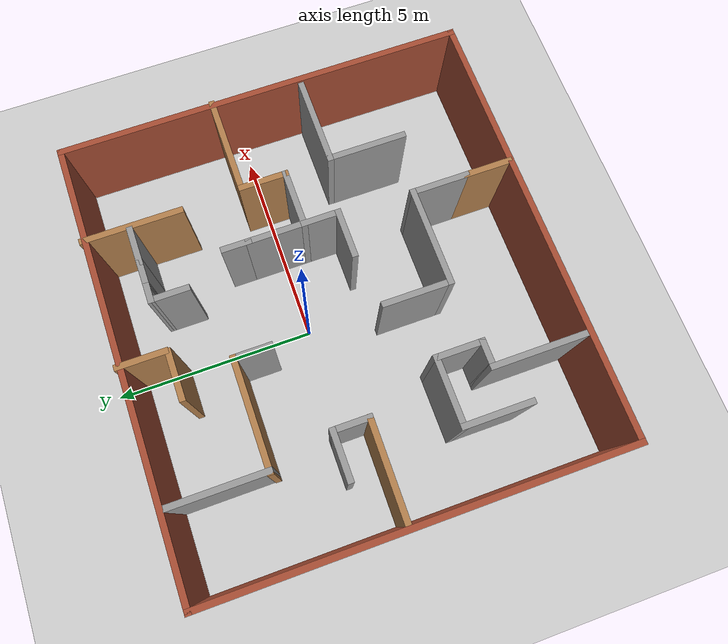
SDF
<sdf version="1.7">
 <world name="default">
  <light name="sun" type="directional">
   <pose>0 0 10 0 -0 0</pose>
   <diffuse>0.8 0.8 0.8 1</diffuse>
   <specular>0.2 0.2 0.2 1</specular>
   <attenuation>
    <range>1000</range>
    <constant>0.9</constant>
    <linear>0.01</linear>
    <quadratic>0.001</quadratic>
   </attenuation>
   <direction>-0.5 0.1 -0.9</direction>
   <spot><inner_angle>0</inner_angle><outer_angle>0</outer_angle><falloff>0</falloff></spot>
  </light>
  <model name="ground_plane">
   <static>1</static>
   <link name="link">
    <collision name="collision">
     <geometry><plane><normal>0 0 1</normal><size>100 100</size></plane></geometry>
     <surface>
      <contact><collide_bitmask>65535</collide_bitmask></contact>
      <friction><ode><mu>100</mu><mu2>50</mu2></ode></friction>
     </surface>
    </collision>
    <visual name="visual">
     <cast_shadows>0</cast_shadows>
     <geometry><plane><normal>0 0 1</normal><size>100 100</size></plane></geometry>
     <material>
      <script><uri>file://media/materials/scripts/gazebo.material</uri><name>Gazebo/Grey</name></script>
     </material>
    </visual>
   </link>
  </model>
  <gravity>0 0 -9.8</gravity>
  <magnetic_field>6e-06 2.3e-05 -4.2e-05</magnetic_field>
  <atmosphere type="adiabatic"/>
  <physics type="ode">
   <max_step_size>0.001</max_step_size>
   <real_time_factor>1</real_time_factor>
   <real_time_update_rate>1000</real_time_update_rate>
  </physics>
  <scene><ambient>0.4 0.4 0.4 1</ambient><background>0.7 0.7 0.7 1</background><shadows>1</shadows></scene>
  <audio><device>default</device></audio>
  <spherical_coordinates>
   <surface_model>EARTH_WGS84</surface_model>
   <latitude_deg>0</latitude_deg>
   <longitude_deg>0</longitude_deg>
   <elevation>0</elevation>
   <heading_deg>0</heading_deg>
  </spherical_coordinates>
  <model name="arena">
   <pose>0.187539 -0.719546 0 0 -0 0</pose>
   <link name="Wall_0">
    <collision name="Wall_0_Collision">
     <geometry><box><size>10.25 0.15 2.5</size></box></geometry>
     <pose>0 0 1.25 0 -0 0</pose>
    </collision>
    <visual name="Wall_0_Visual">
     <pose>0 0 1.25 0 -0 0</pose>
     <geometry><box><size>10.25 0.15 2.5</size></box></geometry>
     <material>
      <script><uri>file://media/materials/scripts/gazebo.material</uri><name>Gazebo/Bricks</name></script>
      <ambient>1 1 1 1</ambient>
     </material>
     <meta><layer>0</layer></meta>
    </visual>
    <pose>-5.44734 -0.03232 0 0 -0 -1.5708</pose>
   </link>
   <link name="Wall_1">
    <collision name="Wall_1_Collision">
     <geometry><box><size>10.9999 0.15 2.5</size></box></geometry>
     <pose>0 0 1.25 0 -0 0</pose>
    </collision>
    <visual name="Wall_1_Visual">
     <pose>0 0 1.25 0 -0 0</pose>
     <geometry><box><size>10.9999 0.15 2.5</size></box></geometry>
     <material>
      <script><uri>file://media/materials/scripts/gazebo.material</uri><name>Gazebo/Bricks</name></script>
      <ambient>1 1 1 1</ambient>
     </material>
     <meta><layer>0</layer></meta>
    </visual>
    <pose>-0.022441 -5.06589 0 0 -0 0.003029</pose>
   </link>
   <link name="Wall_10">
    <collision name="Wall_10_Collision">
     <geometry><box><size>2.75 0.15 2.5</size></box></geometry>
     <pose>0 0 1.25 0 -0 0</pose>
    </collision>
    <visual name="Wall_10_Visual">
     <pose>0 0 1.25 0 -0 0</pose>
     <geometry><box><size>2.75 0.15 2.5</size></box></geometry>
     <material>
      <script><uri>file://media/materials/scripts/gazebo.material</uri><name>Gazebo/Wood</name></script>
      <ambient>1 1 1 1</ambient>
     </material>
     <meta><layer>0</layer></meta>
    </visual>
    <pose>-2.07918 2.61372 0 0 -0 0</pose>
   </link>
   <link name="Wall_14">
    <collision name="Wall_14_Collision">
     <geometry><box><size>2.47702 0.15 2.5</size></box></geometry>
     <pose>0 0 1.25 0 -0 0</pose>
    </collision>
    <visual name="Wall_14_Visual">
     <pose>0 0 1.25 0 -0 0</pose>
     <geometry><box><size>2.47702 0.15 2.5</size></box></geometry>
     <material>
      <script><uri>file://media/materials/scripts/gazebo.material</uri><name>Gazebo/Wood</name></script>
      <ambient>1 1 1 1</ambient>
     </material>
     <meta><layer>0</layer></meta>
    </visual>
    <pose>-4.16874 0.234017 0 0 -0 -0.008644</pose>
   </link>
   <link name="Wall_17">
    <collision name="Wall_17_Collision">
     <geometry><box><size>1.25 0.15 2.5</size></box></geometry>
     <pose>0 0 1.25 0 -0 0</pose>
    </collision>
    <visual name="Wall_17_Visual">
     <pose>0 0 1.25 0 -0 0</pose>
     <geometry><box><size>1.25 0.15 2.5</size></box></geometry>
     <material>
      <script><uri>file://media/materials/scripts/gazebo.material</uri><name>Gazebo/Wood</name></script>
      <ambient>1 1 1 1</ambient>
     </material>
     <meta><layer>0</layer></meta>
    </visual>
    <pose>3.07746 0.667714 0 0 -0 1.5708</pose>
   </link>
   <link name="Wall_18">
    <collision name="Wall_18_Collision">
     <geometry><box><size>2.5 0.15 2.5</size></box></geometry>
     <pose>0 0 1.25 0 -0 0</pose>
    </collision>
    <visual name="Wall_18_Visual">
     <pose>0 0 1.25 0 -0 0</pose>
     <geometry><box><size>2.5 0.15 2.5</size></box></geometry>
     <material>
      <script><uri>file://media/materials/scripts/gazebo.material</uri><name>Gazebo/Wood</name></script>
      <ambient>1 1 1 1</ambient>
     </material>
     <meta><layer>0</layer></meta>
    </visual>
    <pose>4.27257 1.21771 0 0 -0 0</pose>
   </link>
   <link name="Wall_2">
    <collision name="Wall_2_Collision">
     <geometry><box><size>10.2171 0.15 2.5</size></box></geometry>
     <pose>0 0 1.25 0 -0 0</pose>
    </collision>
    <visual name="Wall_2_Visual">
     <pose>0 0 1.25 0 -0 0</pose>
     <geometry><box><size>10.2171 0.15 2.5</size></box></geometry>
     <material>
      <script><uri>file://media/materials/scripts/gazebo.material</uri><name>Gazebo/Bricks</name></script>
      <ambient>1 1 1 1</ambient>
     </material>
     <meta><layer>0</layer></meta>
    </visual>
    <pose>5.40256 -0.015887 0 0 -0 1.57078</pose>
   </link>
   <link name="Wall_21">
    <collision name="Wall_21_Collision">
     <geometry><box><size>1.25 0.15 2.5</size></box></geometry>
     <pose>0 0 1.25 0 -0 0</pose>
    </collision>
    <visual name="Wall_21_Visual">
     <pose>0 0 1.25 0 -0 0</pose>
     <geometry><box><size>1.25 0.15 2.5</size></box></geometry>
     <material>
      <script><uri>file://media/materials/scripts/gazebo.material</uri><name>Gazebo/Wood</name></script>
      <ambient>1 1 1 1</ambient>
     </material>
     <meta><layer>0</layer></meta>
    </visual>
    <pose>1.62265 -4.46636 0 0 -0 -1.5708</pose>
   </link>
   <link name="Wall_23">
    <collision name="Wall_23_Collision">
     <geometry><box><size>1.25 0.15 2.5</size></box></geometry>
     <pose>0 0 1.25 0 -0 0</pose>
    </collision>
    <visual name="Wall_23_Visual">
     <pose>0 0 1.25 0 -0 0</pose>
     <geometry><box><size>1.25 0.15 2.5</size></box></geometry>
     <material>
      <script><uri>file://media/materials/scripts/gazebo.material</uri><name>Gazebo/Wood</name></script>
      <ambient>1 1 1 1</ambient>
     </material>
     <meta><layer>0</layer></meta>
    </visual>
    <pose>-0.711218 3.92787 0 0 -0 0</pose>
   </link>
   <link name="Wall_25">
    <collision name="Wall_25_Collision">
     <geometry><box><size>0.750446 0.15 2.5</size></box></geometry>
     <pose>0 0 1.25 0 -0 0</pose>
    </collision>
    <visual name="Wall_25_Visual">
     <pose>0 0 1.25 0 -0 0</pose>
     <geometry><box><size>0.750446 0.15 2.5</size></box></geometry>
     <material>
      <script><uri>file://media/materials/scripts/gazebo.material</uri><name>Gazebo/Grey</name></script>
      <ambient>1 1 1 1</ambient>
     </material>
     <meta><layer>0</layer></meta>
    </visual>
    <pose>1.76657 3.97212 0 0 -0 3.14159</pose>
   </link>
   <link name="Wall_3">
    <collision name="Wall_3_Collision">
     <geometry><box><size>11 0.15 2.5</size></box></geometry>
     <pose>0 0 1.25 0 -0 0</pose>
    </collision>
    <visual name="Wall_3_Visual">
     <pose>0 0 1.25 0 -0 0</pose>
     <geometry><box><size>11 0.15 2.5</size></box></geometry>
     <material>
      <script><uri>file://media/materials/scripts/gazebo.material</uri><name>Gazebo/Bricks</name></script>
      <ambient>1 1 1 1</ambient>
     </material>
     <meta><layer>0</layer></meta>
    </visual>
    <pose>-0.022344 5.01768 0 0 -0 3.14159</pose>
   </link>
   <link name="Wall_31">
    <collision name="Wall_31_Collision">
     <geometry><box><size>1.5 0.15 2.5</size></box></geometry>
     <pose>0 0 1.25 0 -0 0</pose>
    </collision>
    <visual name="Wall_31_Visual">
     <pose>0 0 1.25 0 -0 0</pose>
     <geometry><box><size>1.5 0.15 2.5</size></box></geometry>
     <material>
      <script><uri>file://media/materials/scripts/gazebo.material</uri><name>Gazebo/Grey</name></script>
      <ambient>1 1 1 1</ambient>
     </material>
     <meta><layer>0</layer></meta>
    </visual>
    <pose>2.40246 0.117714 0 0 -0 3.14159</pose>
   </link>
   <link name="Wall_35">
    <collision name="Wall_35_Collision">
     <geometry><box><size>0.500111 0.15 2.5</size></box></geometry>
     <pose>0 0 1.25 0 -0 0</pose>
    </collision>
    <visual name="Wall_35_Visual">
     <pose>0 0 1.25 0 -0 0</pose>
     <geometry><box><size>0.500111 0.15 2.5</size></box></geometry>
     <material>
      <script><uri>file://media/materials/scripts/gazebo.material</uri><name>Gazebo/Grey</name></script>
      <ambient>1 1 1 1</ambient>
     </material>
     <meta><layer>0</layer></meta>
    </visual>
    <pose>1.29152 3.97234 0 0 -0 3.14039</pose>
   </link>
   <link name="Wall_36">
    <collision name="Wall_36_Collision">
     <geometry><box><size>1 0.15 2.5</size></box></geometry>
     <pose>0 0 1.25 0 -0 0</pose>
    </collision>
    <visual name="Wall_36_Visual">
     <pose>0 0 1.25 0 -0 0</pose>
     <geometry><box><size>1 0.15 2.5</size></box></geometry>
     <material>
      <script><uri>file://media/materials/scripts/gazebo.material</uri><name>Gazebo/Grey</name></script>
      <ambient>1 1 1 1</ambient>
     </material>
     <meta><layer>0</layer></meta>
    </visual>
    <pose>1.11646 3.54755 0 0 -0 -1.5708</pose>
   </link>
   <link name="Wall_38">
    <collision name="Wall_38_Collision">
     <geometry><box><size>1 0.15 2.5</size></box></geometry>
     <pose>0 0 1.25 0 -0 0</pose>
    </collision>
    <visual name="Wall_38_Visual">
     <pose>0 0 1.25 0 -0 0</pose>
     <geometry><box><size>1 0.15 2.5</size></box></geometry>
     <material>
      <script><uri>file://media/materials/scripts/gazebo.material</uri><name>Gazebo/Grey</name></script>
      <ambient>1 1 1 1</ambient>
     </material>
     <meta><layer>0</layer></meta>
    </visual>
    <pose>2.49157 3.97212 0 0 -0 0</pose>
   </link>
   <link name="Wall_40">
    <collision name="Wall_40_Collision">
     <geometry><box><size>2.25 0.15 2.5</size></box></geometry>
     <pose>0 0 1.25 0 -0 0</pose>
    </collision>
    <visual name="Wall_40_Visual">
     <pose>0 0 1.25 0 -0 0</pose>
     <geometry><box><size>2.25 0.15 2.5</size></box></geometry>
     <material>
      <script><uri>file://media/materials/scripts/gazebo.material</uri><name>Gazebo/Grey</name></script>
      <ambient>1 1 1 1</ambient>
     </material>
     <meta><layer>0</layer></meta>
    </visual>
    <pose>4.16262 -1.01274 0 0 -0 3.14159</pose>
   </link>
   <link name="Wall_41">
    <collision name="Wall_41_Collision">
     <geometry><box><size>2 0.15 2.5</size></box></geometry>
     <pose>0 0 1.25 0 -0 0</pose>
    </collision>
    <visual name="Wall_41_Visual">
     <pose>0 0 1.25 0 -0 0</pose>
     <geometry><box><size>2 0.15 2.5</size></box></geometry>
     <material>
      <script><uri>file://media/materials/scripts/gazebo.material</uri><name>Gazebo/Grey</name></script>
      <ambient>1 1 1 1</ambient>
     </material>
     <meta><layer>0</layer></meta>
    </visual>
    <pose>3.11262 -1.93774 0 0 -0 -1.5708</pose>
   </link>
   <link name="Wall_44">
    <collision name="Wall_44_Collision">
     <geometry><box><size>1.5 0.15 2.5</size></box></geometry>
     <pose>0 0 1.25 0 -0 0</pose>
    </collision>
    <visual name="Wall_44_Visual">
     <pose>0 0 1.25 0 -0 0</pose>
     <geometry><box><size>1.5 0.15 2.5</size></box></geometry>
     <material>
      <script><uri>file://media/materials/scripts/gazebo.material</uri><name>Gazebo/Grey</name></script>
      <ambient>1 1 1 1</ambient>
     </material>
     <meta><layer>0</layer></meta>
    </visual>
    <pose>1.62265 -3.24136 0 0 -0 1.5708</pose>
   </link>
   <link name="Wall_45">
    <collision name="Wall_45_Collision">
     <geometry><box><size>2.5 0.15 2.5</size></box></geometry>
     <pose>0 0 1.25 0 -0 0</pose>
    </collision>
    <visual name="Wall_45_Visual">
     <pose>0 0 1.25 0 -0 0</pose>
     <geometry><box><size>2.5 0.15 2.5</size></box></geometry>
     <material>
      <script><uri>file://media/materials/scripts/gazebo.material</uri><name>Gazebo/Grey</name></script>
      <ambient>1 1 1 1</ambient>
     </material>
     <meta><layer>0</layer></meta>
    </visual>
    <pose>0.447654 -2.56636 0 0 -0 3.14159</pose>
   </link>
   <link name="Wall_47">
    <collision name="Wall_47_Collision">
     <geometry><box><size>2.5 0.15 2.5</size></box></geometry>
     <pose>0 0 1.25 0 -0 0</pose>
    </collision>
    <visual name="Wall_47_Visual">
     <pose>0 0 1.25 0 -0 0</pose>
     <geometry><box><size>2.5 0.15 2.5</size></box></geometry>
     <material>
      <script><uri>file://media/materials/scripts/gazebo.material</uri><name>Gazebo/Grey</name></script>
      <ambient>1 1 1 1</ambient>
     </material>
     <meta><layer>0</layer></meta>
    </visual>
    <pose>-2.86046 -3.88683 0 0 -0 1.5708</pose>
   </link>
   <link name="Wall_48">
    <collision name="Wall_48_Collision">
     <geometry><box><size>0.75 0.15 2.5</size></box></geometry>
     <pose>0 0 1.25 0 -0 0</pose>
    </collision>
    <visual name="Wall_48_Visual">
     <pose>0 0 1.25 0 -0 0</pose>
     <geometry><box><size>0.75 0.15 2.5</size></box></geometry>
     <material>
      <script><uri>file://media/materials/scripts/gazebo.material</uri><name>Gazebo/Grey</name></script>
      <ambient>1 1 1 1</ambient>
     </material>
     <meta><layer>0</layer></meta>
    </visual>
    <pose>-2.56046 -2.71183 0 0 -0 0</pose>
   </link>
   <link name="Wall_49">
    <collision name="Wall_49_Collision">
     <geometry><box><size>1.25 0.15 2.5</size></box></geometry>
     <pose>0 0 1.25 0 -0 0</pose>
    </collision>
    <visual name="Wall_49_Visual">
     <pose>0 0 1.25 0 -0 0</pose>
     <geometry><box><size>1.25 0.15 2.5</size></box></geometry>
     <material>
      <script><uri>file://media/materials/scripts/gazebo.material</uri><name>Gazebo/Grey</name></script>
      <ambient>1 1 1 1</ambient>
     </material>
     <meta><layer>0</layer></meta>
    </visual>
    <pose>-2.26046 -2.16183 0 0 -0 1.5708</pose>
   </link>
   <link name="Wall_5">
    <collision name="Wall_5_Collision">
     <geometry><box><size>1.25 0.15 2.5</size></box></geometry>
     <pose>0 0 1.25 0 -0 0</pose>
    </collision>
    <visual name="Wall_5_Visual">
     <pose>0 0 1.25 0 -0 0</pose>
     <geometry><box><size>1.25 0.15 2.5</size></box></geometry>
     <material>
      <script><uri>file://media/materials/scripts/gazebo.material</uri><name>Gazebo/Wood</name></script>
      <ambient>1 1 1 1</ambient>
     </material>
     <meta><layer>0</layer></meta>
    </visual>
    <pose>-0.130539 4.53255 0 0 -0 -1.5708</pose>
   </link>
   <link name="Wall_50">
    <collision name="Wall_50_Collision">
     <geometry><box><size>1.75 0.15 2.5</size></box></geometry>
     <pose>0 0 1.25 0 -0 0</pose>
    </collision>
    <visual name="Wall_50_Visual">
     <pose>0 0 1.25 0 -0 0</pose>
     <geometry><box><size>1.75 0.15 2.5</size></box></geometry>
     <material>
      <script><uri>file://media/materials/scripts/gazebo.material</uri><name>Gazebo/Grey</name></script>
      <ambient>1 1 1 1</ambient>
     </material>
     <meta><layer>0</layer></meta>
    </visual>
    <pose>-3.06046 -1.61183 0 0 -0 3.14159</pose>
   </link>
   <link name="Wall_51">
    <collision name="Wall_51_Collision">
     <geometry><box><size>1.75 0.15 2.5</size></box></geometry>
     <pose>0 0 1.25 0 -0 0</pose>
    </collision>
    <visual name="Wall_51_Visual">
     <pose>0 0 1.25 0 -0 0</pose>
     <geometry><box><size>1.75 0.15 2.5</size></box></geometry>
     <material>
      <script><uri>file://media/materials/scripts/gazebo.material</uri><name>Gazebo/Grey</name></script>
      <ambient>1 1 1 1</ambient>
     </material>
     <meta><layer>0</layer></meta>
    </visual>
    <pose>-3.86046 -2.41183 0 0 -0 -1.5708</pose>
   </link>
   <link name="Wall_53">
    <collision name="Wall_53_Collision">
     <geometry><box><size>1 0.15 2.5</size></box></geometry>
     <pose>0 0 1.25 0 -0 0</pose>
    </collision>
    <visual name="Wall_53_Visual">
     <pose>0 0 1.25 0 -0 0</pose>
     <geometry><box><size>1 0.15 2.5</size></box></geometry>
     <material>
      <script><uri>file://media/materials/scripts/gazebo.material</uri><name>Gazebo/Grey</name></script>
      <ambient>1 1 1 1</ambient>
     </material>
     <meta><layer>0</layer></meta>
    </visual>
    <pose>-0.779177 2.18872 0 0 -0 -1.5708</pose>
   </link>
   <link name="Wall_58">
    <collision name="Wall_58_Collision">
     <geometry><box><size>1 0.15 2.5</size></box></geometry>
     <pose>0 0 1.25 0 -0 0</pose>
    </collision>
    <visual name="Wall_58_Visual">
     <pose>0 0 1.25 0 -0 0</pose>
     <geometry><box><size>1 0.15 2.5</size></box></geometry>
     <material>
      <script><uri>file://media/materials/scripts/gazebo.material</uri><name>Gazebo/Grey</name></script>
      <ambient>1 1 1 1</ambient>
     </material>
     <meta><layer>0</layer></meta>
    </visual>
    <pose>-3.00528 0.64896 0 0 -0 1.5708</pose>
   </link>
   <link name="Wall_59">
    <collision name="Wall_59_Collision">
     <geometry><box><size>1.25 0.15 2.5</size></box></geometry>
     <pose>0 0 1.25 0 -0 0</pose>
    </collision>
    <visual name="Wall_59_Visual">
     <pose>0 0 1.25 0 -0 0</pose>
     <geometry><box><size>1.25 0.15 2.5</size></box></geometry>
     <material>
      <script><uri>file://media/materials/scripts/gazebo.material</uri><name>Gazebo/Grey</name></script>
      <ambient>1 1 1 1</ambient>
     </material>
     <meta><layer>0</layer></meta>
    </visual>
    <pose>-3.55528 1.07396 0 0 -0 3.14159</pose>
   </link>
   <link name="Wall_61">
    <collision name="Wall_61_Collision">
     <geometry><box><size>1.5 0.15 2.5</size></box></geometry>
     <pose>0 0 1.25 0 -0 0</pose>
    </collision>
    <visual name="Wall_61_Visual">
     <pose>0 0 1.25 0 -0 0</pose>
     <geometry><box><size>1.5 0.15 2.5</size></box></geometry>
     <material>
      <script><uri>file://media/materials/scripts/gazebo.material</uri><name>Gazebo/Grey</name></script>
      <ambient>1 1 1 1</ambient>
     </material>
     <meta><layer>0</layer></meta>
    </visual>
    <pose>1.72746 0.792714 0 0 -0 1.5708</pose>
   </link>
   <link name="Wall_62">
    <collision name="Wall_62_Collision">
     <geometry><box><size>0.75 0.15 2.5</size></box></geometry>
     <pose>0 0 1.25 0 -0 0</pose>
    </collision>
    <visual name="Wall_62_Visual">
     <pose>0 0 1.25 0 -0 0</pose>
     <geometry><box><size>0.75 0.15 2.5</size></box></geometry>
     <material>
      <script><uri>file://media/materials/scripts/gazebo.material</uri><name>Gazebo/Grey</name></script>
      <ambient>1 1 1 1</ambient>
     </material>
     <meta><layer>0</layer></meta>
    </visual>
    <pose>1.72746 1.76771 0 0 -0 1.5708</pose>
   </link>
   <link name="Wall_64">
    <collision name="Wall_64_Collision">
     <geometry><box><size>1 0.15 2.5</size></box></geometry>
     <pose>0 0 1.25 0 -0 0</pose>
    </collision>
    <visual name="Wall_64_Visual">
     <pose>0 0 1.25 0 -0 0</pose>
     <geometry><box><size>1 0.15 2.5</size></box></geometry>
     <material>
      <script><uri>file://media/materials/scripts/gazebo.material</uri><name>Gazebo/Grey</name></script>
      <ambient>1 1 1 1</ambient>
     </material>
     <meta><layer>0</layer></meta>
    </visual>
    <pose>1.72746 -0.307286 0 0 -0 -1.5708</pose>
   </link>
   <link name="Wall_65">
    <collision name="Wall_65_Collision">
     <geometry><box><size>1.25 0.15 2.5</size></box></geometry>
     <pose>0 0 1.25 0 -0 0</pose>
    </collision>
    <visual name="Wall_65_Visual">
     <pose>0 0 1.25 0 -0 0</pose>
     <geometry><box><size>1.25 0.15 2.5</size></box></geometry>
     <material>
      <script><uri>file://media/materials/scripts/gazebo.material</uri><name>Gazebo/Grey</name></script>
      <ambient>1 1 1 1</ambient>
     </material>
     <meta><layer>0</layer></meta>
    </visual>
    <pose>1.17746 -0.732286 0 0 -0 3.14159</pose>
   </link>
   <link name="Wall_67">
    <collision name="Wall_67_Collision">
     <geometry><box><size>1.75 0.15 2.5</size></box></geometry>
     <pose>0 0 1.25 0 -0 0</pose>
    </collision>
    <visual name="Wall_67_Visual">
     <pose>0 0 1.25 0 -0 0</pose>
     <geometry><box><size>1.75 0.15 2.5</size></box></geometry>
     <material>
      <script><uri>file://media/materials/scripts/gazebo.material</uri><name>Gazebo/Grey</name></script>
      <ambient>1 1 1 1</ambient>
     </material>
     <meta><layer>0</layer></meta>
    </visual>
    <pose>-0.727346 -1.76636 0 0 -0 1.5708</pose>
   </link>
   <link name="Wall_7">
    <collision name="Wall_7_Collision">
     <geometry><box><size>2.5 0.15 2.5</size></box></geometry>
     <pose>0 0 1.25 0 -0 0</pose>
    </collision>
    <visual name="Wall_7_Visual">
     <pose>0 0 1.25 0 -0 0</pose>
     <geometry><box><size>2.5 0.15 2.5</size></box></geometry>
     <material>
      <script><uri>file://media/materials/scripts/gazebo.material</uri><name>Gazebo/Wood</name></script>
      <ambient>1 1 1 1</ambient>
     </material>
     <meta><layer>0</layer></meta>
    </visual>
    <pose>3.00386 3.90739 0 0 -0 -1.5708</pose>
   </link>
   <link name="Wall_9">
    <collision name="Wall_9_Collision">
     <geometry><box><size>2.5 0.15 2.5</size></box></geometry>
     <pose>0 0 1.25 0 -0 0</pose>
    </collision>
    <visual name="Wall_9_Visual">
     <pose>0 0 1.25 0 -0 0</pose>
     <geometry><box><size>2.5 0.15 2.5</size></box></geometry>
     <material>
      <script><uri>file://media/materials/scripts/gazebo.material</uri><name>Gazebo/Grey</name></script>
      <ambient>1 1 1 1</ambient>
     </material>
     <meta><layer>0</layer></meta>
    </visual>
    <pose>-3.35906 3.78872 0 0 -0 -1.5708</pose>
   </link>
   <static>1</static>
  </model>
 </world>
</sdf>
